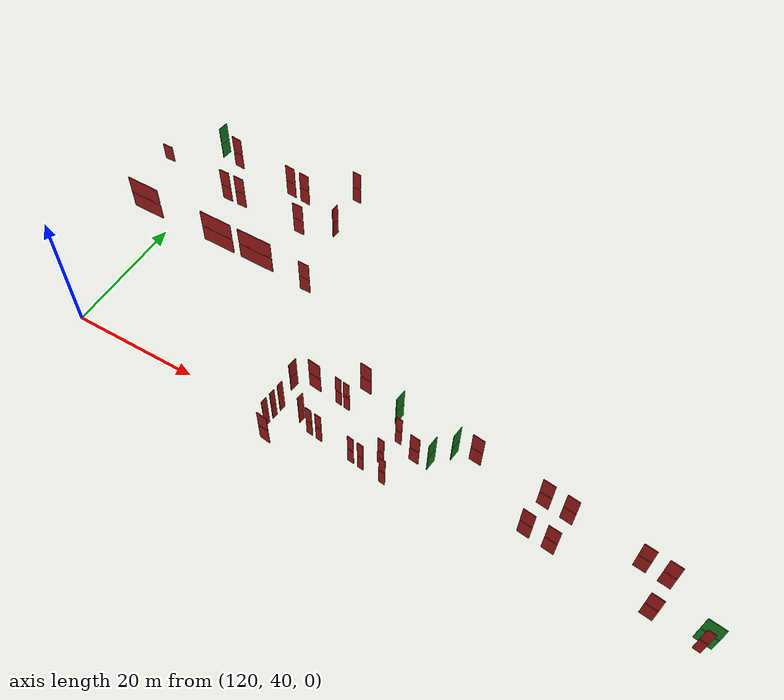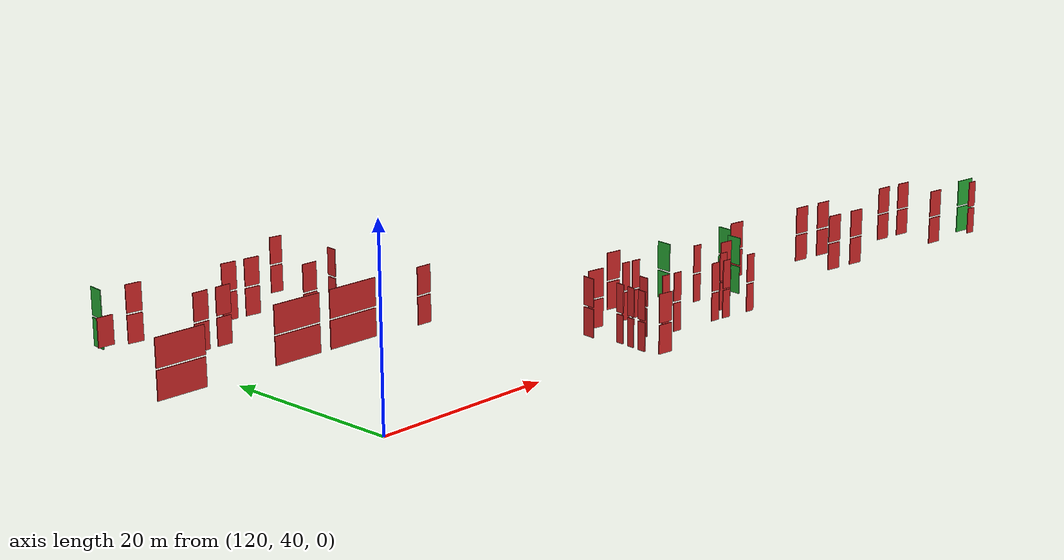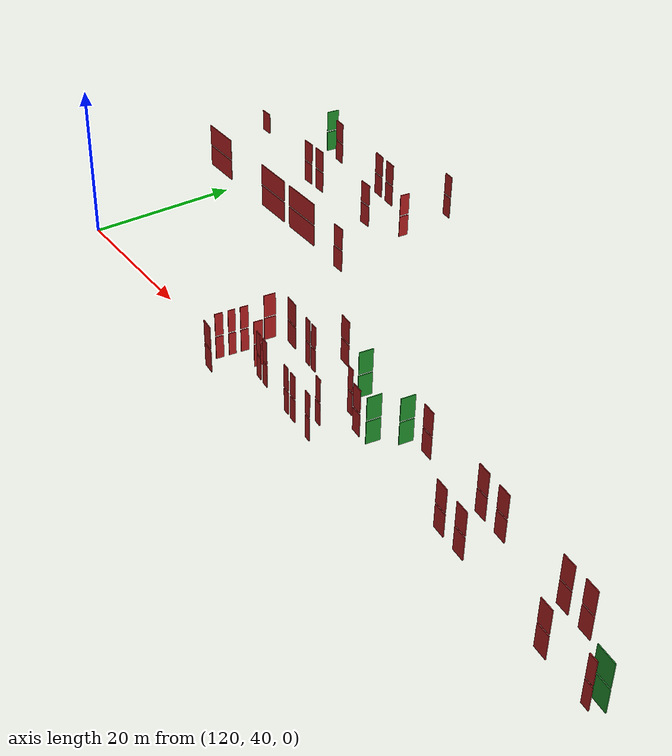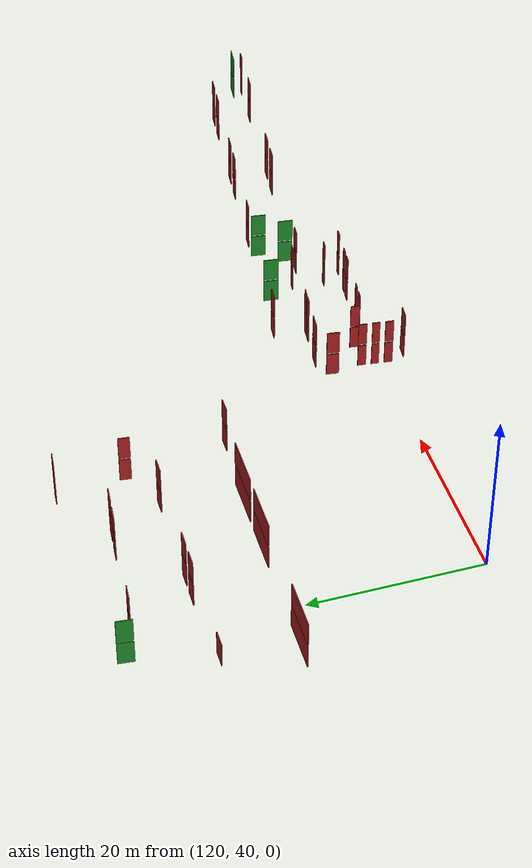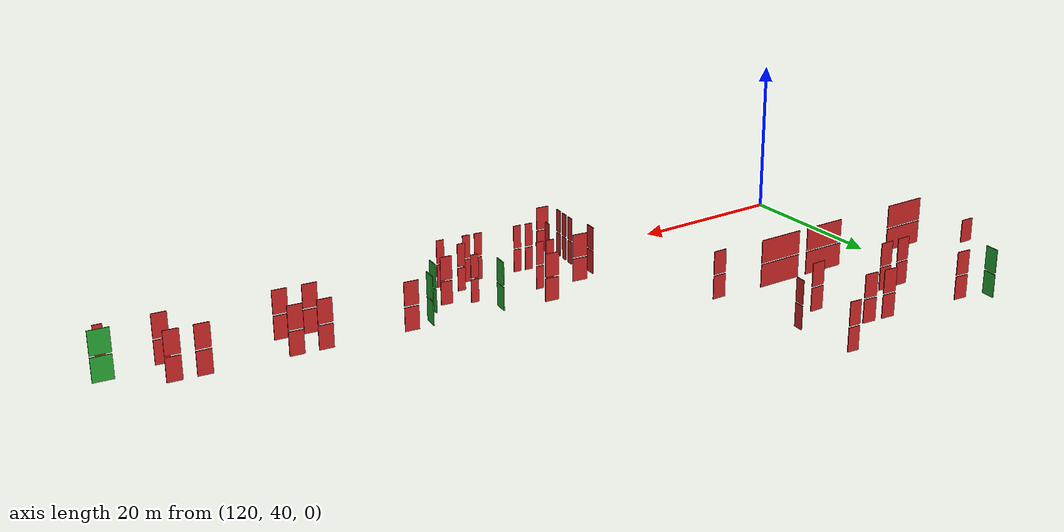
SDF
<sdf version="1.6">
 <world name="default">
  <model name="door_153.8_39.0_0.0">
   <static>true</static>
   <pose>153.77499999999418 38.99500000011176 1.5 0 0 -1.6814535479881518</pose>
   <link name="link">
    <visual name="visual">
     <geometry><box><size>0.9960923654221514 0.1 3</size></box></geometry>
     <material>
      <script><uri>file://media/materials/scripts/gazebo.material</uri><name>Gazebo/Red</name></script>
     </material>
    </visual>
   </link>
  </model>
  <model name="door_166.5_39.9_0.0">
   <static>true</static>
   <pose>166.50500000000466 39.91000000014901 1.5 0 0 -0.1206236686924795</pose>
   <link name="link">
    <visual name="visual">
     <geometry><box><size>0.9972462083198822 0.1 3</size></box></geometry>
     <material>
      <script><uri>file://media/materials/scripts/gazebo.material</uri><name>Gazebo/Red</name></script>
     </material>
    </visual>
   </link>
  </model>
  <model name="door_153.7_45.9_0.0">
   <static>true</static>
   <pose>153.6600000000035 45.92999999993481 1.5 0 0 -1.6918235466009592</pose>
   <link name="link">
    <visual name="visual">
     <geometry><box><size>1.4909057649436974 0.1 3</size></box></geometry>
     <material>
      <script><uri>file://media/materials/scripts/gazebo.material</uri><name>Gazebo/Red</name></script>
     </material>
    </visual>
   </link>
  </model>
  <model name="door_161.1_40.6_0.0">
   <static>true</static>
   <pose>161.1350000000093 40.56000000005588 1.5 0 0 -0.1206236686924795</pose>
   <link name="link">
    <visual name="visual">
     <geometry><box><size>0.9972462083198822 0.1 3</size></box></geometry>
     <material>
      <script><uri>file://media/materials/scripts/gazebo.material</uri><name>Gazebo/Red</name></script>
     </material>
    </visual>
   </link>
  </model>
  <model name="door_191.0_47.1_0.0">
   <static>true</static>
   <pose>190.97500000000582 47.06499999994412 1.5 0 0 3.02480805813934</pose>
   <link name="link">
    <visual name="visual">
     <geometry><box><size>1.8022763383869123 0.1 3</size></box></geometry>
     <material>
      <script><uri>file://media/materials/scripts/gazebo.material</uri><name>Gazebo/Red</name></script>
     </material>
    </visual>
   </link>
  </model>
  <model name="door_180.6_48.3_0.0">
   <static>true</static>
   <pose>180.6350000000093 48.31000000005588 1.5 0 0 3.0193009299888676</pose>
   <link name="link">
    <visual name="visual">
     <geometry><box><size>1.8034688796923075 0.1 3</size></box></geometry>
     <material>
      <script><uri>file://media/materials/scripts/gazebo.material</uri><name>Gazebo/Red</name></script>
     </material>
    </visual>
   </link>
  </model>
  <model name="door_154.0_40.6_0.0">
   <static>true</static>
   <pose>153.9649999999965 40.574999999953434 1.5 0 0 -1.693768196390317</pose>
   <link name="link">
    <visual name="visual">
     <geometry><box><size>0.8967719889926413 0.1 3</size></box></geometry>
     <material>
      <script><uri>file://media/materials/scripts/gazebo.material</uri><name>Gazebo/Red</name></script>
     </material>
    </visual>
   </link>
  </model>
  <model name="door_168.1_39.7_0.0">
   <static>true</static>
   <pose>168.09500000000116 39.71999999997206 1.5 0 0 -0.12062366822190172</pose>
   <link name="link">
    <visual name="visual">
     <geometry><box><size>0.9972462083216332 0.1 3</size></box></geometry>
     <material>
      <script><uri>file://media/materials/scripts/gazebo.material</uri><name>Gazebo/Red</name></script>
     </material>
    </visual>
   </link>
  </model>
  <model name="door_194.4_46.6_0.0">
   <static>true</static>
   <pose>194.41500000000815 46.64999999990687 1.5 0 0 3.0193009299849303</pose>
   <link name="link">
    <visual name="visual">
     <geometry><box><size>1.8034688796345346 0.1 3</size></box></geometry>
     <material>
      <script><uri>file://media/materials/scripts/gazebo.material</uri><name>Gazebo/Red</name></script>
     </material>
    </visual>
   </link>
  </model>
  <model name="door_204.7_45.4_0.0">
   <static>true</static>
   <pose>204.74499999999534 45.40499999979511 1.5 0 0 3.0248080581431034</pose>
   <link name="link">
    <visual name="visual">
     <geometry><box><size>1.8022763384447233 0.1 3</size></box></geometry>
     <material>
      <script><uri>file://media/materials/scripts/gazebo.material</uri><name>Gazebo/Red</name></script>
     </material>
    </visual>
   </link>
  </model>
  <model name="door_156.3_47.3_0.0">
   <static>true</static>
   <pose>156.25500000000466 47.32000000006519 1.5 0 0 -0.12002333835124222</pose>
   <link name="link">
    <visual name="visual">
     <geometry><box><size>2.004420115606183 0.1 3</size></box></geometry>
     <material>
      <script><uri>file://media/materials/scripts/gazebo.material</uri><name>Gazebo/Red</name></script>
     </material>
    </visual>
   </link>
  </model>
  <model name="door_160.4_46.8_0.0">
   <static>true</static>
   <pose>160.3850000000093 46.81999999983236 1.5 0 0 -0.1206236686924795</pose>
   <link name="link">
    <visual name="visual">
     <geometry><box><size>0.9972462083198822 0.1 3</size></box></geometry>
     <material>
      <script><uri>file://media/materials/scripts/gazebo.material</uri><name>Gazebo/Red</name></script>
     </material>
    </visual>
   </link>
  </model>
  <model name="door_161.8_46.7_0.0">
   <static>true</static>
   <pose>161.7600000000093 46.66000000014901 1.5 0 0 -0.11942892612851068</pose>
   <link name="link">
    <visual name="visual">
     <geometry><box><size>1.0071742649744493 0.1 3</size></box></geometry>
     <material>
      <script><uri>file://media/materials/scripts/gazebo.material</uri><name>Gazebo/Red</name></script>
     </material>
    </visual>
   </link>
  </model>
  <model name="door_170.5_45.6_0.0">
   <static>true</static>
   <pose>170.48499999998603 45.609999999869615 1.5 0 0 -0.1206236686924795</pose>
   <link name="link">
    <visual name="visual">
     <geometry><box><size>0.9972462083198822 0.1 3</size></box></geometry>
     <material>
      <script><uri>file://media/materials/scripts/gazebo.material</uri><name>Gazebo/Red</name></script>
     </material>
    </visual>
   </link>
  </model>
  <model name="door_175.8_44.9_0.0">
   <static>true</static>
   <pose>175.80500000022585 44.86500000022352 1.5 0 0 1.4540117310915928</pose>
   <link name="link">
    <visual name="visual">
     <geometry><box><size>1.802276338498982 0.1 3</size></box></geometry>
     <material>
      <script><uri>file://media/materials/scripts/gazebo.material</uri><name>Gazebo/Green</name></script>
     </material>
    </visual>
   </link>
  </model>
  <model name="door_190.5_42.2_0.0">
   <static>true</static>
   <pose>190.5 42.18999999994412 1.5 0 0 -0.12161902311549111</pose>
   <link name="link">
    <visual name="visual">
     <geometry><box><size>1.8133946068224918 0.1 3</size></box></geometry>
     <material>
      <script><uri>file://media/materials/scripts/gazebo.material</uri><name>Gazebo/Red</name></script>
     </material>
    </visual>
   </link>
  </model>
  <model name="door_194.0_41.8_0.0">
   <static>true</static>
   <pose>194.0350000000035 41.765000000130385 1.5 0 0 -0.11678459545045303</pose>
   <link name="link">
    <visual name="visual">
     <geometry><box><size>1.8022763383869123 0.1 3</size></box></geometry>
     <material>
      <script><uri>file://media/materials/scripts/gazebo.material</uri><name>Gazebo/Red</name></script>
     </material>
    </visual>
   </link>
  </model>
  <model name="door_207.6_40.1_0.0">
   <static>true</static>
   <pose>207.55999999999767 40.13500000000931 1.5 0 0 -0.11743469003206944</pose>
   <link name="link">
    <visual name="visual">
     <geometry><box><size>1.7923448329714338 0.1 3</size></box></geometry>
     <material>
      <script><uri>file://media/materials/scripts/gazebo.material</uri><name>Gazebo/Red</name></script>
     </material>
    </visual>
   </link>
  </model>
  <model name="door_177.8_47.7_0.0">
   <static>true</static>
   <pose>177.8499999999185 47.734999999869615 1.5 0 0 -1.6930880506520969</pose>
   <link name="link">
    <visual name="visual">
     <geometry><box><size>1.803468879749112 0.1 3</size></box></geometry>
     <material>
      <script><uri>file://media/materials/scripts/gazebo.material</uri><name>Gazebo/Green</name></script>
     </material>
    </visual>
   </link>
  </model>
  <model name="door_168.8_48.8_0.0">
   <static>true</static>
   <pose>168.83500000002095 48.825000000186265 1.5 0 0 -1.6875809222415865</pose>
   <link name="link">
    <visual name="visual">
     <geometry><box><size>1.8022763384447233 0.1 3</size></box></geometry>
     <material>
      <script><uri>file://media/materials/scripts/gazebo.material</uri><name>Gazebo/Green</name></script>
     </material>
    </visual>
   </link>
  </model>
  <model name="door_162.6_50.5_0.0">
   <static>true</static>
   <pose>162.57000000000698 50.484999999869615 1.5 0 0 3.02415796381574</pose>
   <link name="link">
    <visual name="visual">
     <geometry><box><size>1.7923448329168745 0.1 3</size></box></geometry>
     <material>
      <script><uri>file://media/materials/scripts/gazebo.material</uri><name>Gazebo/Red</name></script>
     </material>
    </visual>
   </link>
  </model>
  <model name="door_173.6_44.2_0.0">
   <static>true</static>
   <pose>173.6149999999907 44.21999999997206 1.5 0 0 -0.12022278677294355</pose>
   <link name="link">
    <visual name="visual">
     <geometry><box><size>1.5008331019912227 0.1 3</size></box></geometry>
     <material>
      <script><uri>file://media/materials/scripts/gazebo.material</uri><name>Gazebo/Red</name></script>
     </material>
    </visual>
   </link>
  </model>
  <model name="door_214.1_39.3_0.0">
   <static>true</static>
   <pose>214.1350000000093 39.34499999997206 1.5 0 0 -0.11870533746682131</pose>
   <link name="link">
    <visual name="visual">
     <geometry><box><size>1.097724920014552 0.1 3</size></box></geometry>
     <material>
      <script><uri>file://media/materials/scripts/gazebo.material</uri><name>Gazebo/Red</name></script>
     </material>
    </visual>
   </link>
  </model>
  <model name="door_214.4_40.5_0.0">
   <static>true</static>
   <pose>214.44000000006054 40.52000000001863 1.5 0 0 3.0182549527621143</pose>
   <link name="link">
    <visual name="visual">
     <geometry><box><size>2.438524143724567 0.1 3</size></box></geometry>
     <material>
      <script><uri>file://media/materials/scripts/gazebo.material</uri><name>Gazebo/Green</name></script>
     </material>
    </visual>
   </link>
  </model>
  <model name="door_208.1_45.0_0.0">
   <static>true</static>
   <pose>208.09500000000116 45.0 1.5 0 0 3.0193009299849303</pose>
   <link name="link">
    <visual name="visual">
     <geometry><box><size>1.8034688796345346 0.1 3</size></box></geometry>
     <material>
      <script><uri>file://media/materials/scripts/gazebo.material</uri><name>Gazebo/Red</name></script>
     </material>
    </visual>
   </link>
  </model>
  <model name="door_170.0_41.7_0.0">
   <static>true</static>
   <pose>170.0100000000093 41.68999999994412 1.5 0 0 -0.11942892612851068</pose>
   <link name="link">
    <visual name="visual">
     <geometry><box><size>1.0071742649744493 0.1 3</size></box></geometry>
     <material>
      <script><uri>file://media/materials/scripts/gazebo.material</uri><name>Gazebo/Red</name></script>
     </material>
    </visual>
   </link>
  </model>
  <model name="door_154.2_42.2_0.0">
   <static>true</static>
   <pose>154.15000000002328 42.15500000002794 1.5 0 0 -1.6914199953995817</pose>
   <link name="link">
    <visual name="visual">
     <geometry><box><size>0.997246208074735 0.1 3</size></box></geometry>
     <material>
      <script><uri>file://media/materials/scripts/gazebo.material</uri><name>Gazebo/Red</name></script>
     </material>
    </visual>
   </link>
  </model>
  <model name="door_157.5_41.9_0.0">
   <static>true</static>
   <pose>157.51500000001397 41.94500000006519 1.5 0 0 -1.6895016639081246</pose>
   <link name="link">
    <visual name="visual">
     <geometry><box><size>1.0977249203199801 0.1 3</size></box></geometry>
     <material>
      <script><uri>file://media/materials/scripts/gazebo.material</uri><name>Gazebo/Red</name></script>
     </material>
    </visual>
   </link>
  </model>
  <model name="door_154.9_36.9_0.0">
   <static>true</static>
   <pose>154.86999999999534 36.85000000009313 1.5 0 0 -0.11990398547329398</pose>
   <link name="link">
    <visual name="visual">
     <geometry><box><size>1.6720047847367918 0.1 3</size></box></geometry>
     <material>
      <script><uri>file://media/materials/scripts/gazebo.material</uri><name>Gazebo/Red</name></script>
     </material>
    </visual>
   </link>
  </model>
  <model name="door_159.5_40.8_0.0">
   <static>true</static>
   <pose>159.5449999999837 40.75 1.5 0 0 -0.1206236686924795</pose>
   <link name="link">
    <visual name="visual">
     <geometry><box><size>0.9972462083198822 0.1 3</size></box></geometry>
     <material>
      <script><uri>file://media/materials/scripts/gazebo.material</uri><name>Gazebo/Red</name></script>
     </material>
    </visual>
   </link>
  </model>
  <model name="door_171.6_39.3_0.0">
   <static>true</static>
   <pose>171.56500000000233 39.300000000046566 1.5 0 0 -0.12062366822892527</pose>
   <link name="link">
    <visual name="visual">
     <geometry><box><size>0.9972462082638486 0.1 3</size></box></geometry>
     <material>
      <script><uri>file://media/materials/scripts/gazebo.material</uri><name>Gazebo/Red</name></script>
     </material>
    </visual>
   </link>
  </model>
  <model name="door_135.5_76.8_0.0">
   <static>true</static>
   <pose>135.49499999999534 76.79000000003725 1.5 0 0 -0.10022174961299568</pose>
   <link name="link">
    <visual name="visual">
     <geometry><box><size>1.799027515083101 0.1 3</size></box></geometry>
     <material>
      <script><uri>file://media/materials/scripts/gazebo.material</uri><name>Gazebo/Red</name></script>
     </material>
    </visual>
   </link>
  </model>
  <model name="door_132.7_77.1_0.0">
   <static>true</static>
   <pose>132.7049999999872 77.07000000006519 1.5 0 0 -0.10022174987377463</pose>
   <link name="link">
    <visual name="visual">
     <geometry><box><size>1.7990275150717767 0.1 3</size></box></geometry>
     <material>
      <script><uri>file://media/materials/scripts/gazebo.material</uri><name>Gazebo/Red</name></script>
     </material>
    </visual>
   </link>
  </model>
  <model name="door_121.5_78.2_0.0">
   <static>true</static>
   <pose>121.54000000000815 78.20999999996275 1.5 0 0 -0.09966865232787321</pose>
   <link name="link">
    <visual name="visual">
     <geometry><box><size>1.808977611760522 0.1 3</size></box></geometry>
     <material>
      <script><uri>file://media/materials/scripts/gazebo.material</uri><name>Gazebo/Red</name></script>
     </material>
    </visual>
   </link>
  </model>
  <model name="door_118.0_79.5_0.0">
   <static>true</static>
   <pose>117.96999999985565 79.46499999985099 1.5 0 0 1.470574577181901</pose>
   <link name="link">
    <visual name="visual">
     <geometry><box><size>1.799027515083101 0.1 3</size></box></geometry>
     <material>
      <script><uri>file://media/materials/scripts/gazebo.material</uri><name>Gazebo/Green</name></script>
     </material>
    </visual>
   </link>
  </model>
  <model name="door_142.5_81.3_0.0">
   <static>true</static>
   <pose>142.54999999998836 81.33499999996275 1.5 0 0 -0.09966865273705577</pose>
   <link name="link">
    <visual name="visual">
     <geometry><box><size>1.5074813432052014 0.1 3</size></box></geometry>
     <material>
      <script><uri>file://media/materials/scripts/gazebo.material</uri><name>Gazebo/Red</name></script>
     </material>
    </visual>
   </link>
  </model>
  <model name="door_138.2_70.8_0.0">
   <static>true</static>
   <pose>138.2149999999965 70.78000000002794 1.5 0 0 -0.01104927408967263</pose>
   <link name="link">
    <visual name="visual">
     <geometry><box><size>1.810110493862824 0.1 3</size></box></geometry>
     <material>
      <script><uri>file://media/materials/scripts/gazebo.material</uri><name>Gazebo/Red</name></script>
     </material>
    </visual>
   </link>
  </model>
  <model name="door_127.1_71.0_0.0">
   <static>true</static>
   <pose>127.05000000001746 70.9550000000745 1.5 0 0 3.1249275297309125</pose>
   <link name="link">
    <visual name="visual">
     <geometry><box><size>1.8002499826340055 0.1 3</size></box></geometry>
     <material>
      <script><uri>file://media/materials/scripts/gazebo.material</uri><name>Gazebo/Red</name></script>
     </material>
    </visual>
   </link>
  </model>
  <model name="door_124.3_71.0_0.0">
   <static>true</static>
   <pose>124.26499999998487 70.98999999999069 1.5 0 0 3.1305433795001205</pose>
   <link name="link">
    <visual name="visual">
     <geometry><box><size>1.810110493862824 0.1 3</size></box></geometry>
     <material>
      <script><uri>file://media/materials/scripts/gazebo.material</uri><name>Gazebo/Red</name></script>
     </material>
    </visual>
   </link>
  </model>
  <model name="door_143.5_73.3_0.0">
   <static>true</static>
   <pose>143.4550000000163 73.29500000015832 1.5 0 0 1.4718835320591757</pose>
   <link name="link">
    <visual name="visual">
     <geometry><box><size>1.3164345787571878 0.1 3</size></box></geometry>
     <material>
      <script><uri>file://media/materials/scripts/gazebo.material</uri><name>Gazebo/Red</name></script>
     </material>
    </visual>
   </link>
  </model>
  <model name="door_115.0_62.2_0.0">
   <static>true</static>
   <pose>115.0 62.23999999999069 1.5 0 0 -0.014034166198596688</pose>
   <link name="link">
    <visual name="visual">
     <geometry><box><size>5.700561375812611 0.1 3</size></box></geometry>
     <material>
      <script><uri>file://media/materials/scripts/gazebo.material</uri><name>Gazebo/Red</name></script>
     </material>
    </visual>
   </link>
  </model>
  <model name="door_129.0_62.0_0.0">
   <static>true</static>
   <pose>129.01999999998952 62.049999999813735 1.5 0 0 -0.014034166280132265</pose>
   <link name="link">
    <visual name="visual">
     <geometry><box><size>5.7005613758773475 0.1 3</size></box></geometry>
     <material>
      <script><uri>file://media/materials/scripts/gazebo.material</uri><name>Gazebo/Red</name></script>
     </material>
    </visual>
   </link>
  </model>
  <model name="door_136.2_62.0_0.0">
   <static>true</static>
   <pose>136.19500000000698 61.950000000186265 1.5 0 0 -0.013266220046968015</pose>
   <link name="link">
    <visual name="visual">
     <geometry><box><size>6.030530656612972 0.1 3</size></box></geometry>
     <material>
      <script><uri>file://media/materials/scripts/gazebo.material</uri><name>Gazebo/Red</name></script>
     </material>
    </visual>
   </link>
  </model>
  <model name="door_145.4_61.4_0.0">
   <static>true</static>
   <pose>145.44999999998254 61.360000000102445 1.5 0 0 -0.011110653908026076</pose>
   <link name="link">
    <visual name="visual">
     <geometry><box><size>1.8001111076705336 0.1 3</size></box></geometry>
     <material>
      <script><uri>file://media/materials/scripts/gazebo.material</uri><name>Gazebo/Red</name></script>
     </material>
    </visual>
   </link>
  </model>
  <model name="door_153.8_39.0_3.2">
   <static>true</static>
   <pose>153.77499999999418 38.99500000011176 4.7 0 0 -1.6814535479881518</pose>
   <link name="link">
    <visual name="visual">
     <geometry><box><size>0.9960923654221514 0.1 3</size></box></geometry>
     <material>
      <script><uri>file://media/materials/scripts/gazebo.material</uri><name>Gazebo/Red</name></script>
     </material>
    </visual>
   </link>
  </model>
  <model name="door_166.5_39.9_3.2">
   <static>true</static>
   <pose>166.50500000000466 39.91000000014901 4.7 0 0 -0.1206236686924795</pose>
   <link name="link">
    <visual name="visual">
     <geometry><box><size>0.9972462083198822 0.1 3</size></box></geometry>
     <material>
      <script><uri>file://media/materials/scripts/gazebo.material</uri><name>Gazebo/Red</name></script>
     </material>
    </visual>
   </link>
  </model>
  <model name="door_153.7_45.9_3.2">
   <static>true</static>
   <pose>153.6600000000035 45.92999999993481 4.7 0 0 -1.6918235466009592</pose>
   <link name="link">
    <visual name="visual">
     <geometry><box><size>1.4909057649436974 0.1 3</size></box></geometry>
     <material>
      <script><uri>file://media/materials/scripts/gazebo.material</uri><name>Gazebo/Red</name></script>
     </material>
    </visual>
   </link>
  </model>
  <model name="door_161.1_40.6_3.2">
   <static>true</static>
   <pose>161.1350000000093 40.56000000005588 4.7 0 0 -0.1206236686924795</pose>
   <link name="link">
    <visual name="visual">
     <geometry><box><size>0.9972462083198822 0.1 3</size></box></geometry>
     <material>
      <script><uri>file://media/materials/scripts/gazebo.material</uri><name>Gazebo/Red</name></script>
     </material>
    </visual>
   </link>
  </model>
  <model name="door_191.0_47.1_3.2">
   <static>true</static>
   <pose>190.97500000000582 47.06499999994412 4.7 0 0 3.02480805813934</pose>
   <link name="link">
    <visual name="visual">
     <geometry><box><size>1.8022763383869123 0.1 3</size></box></geometry>
     <material>
      <script><uri>file://media/materials/scripts/gazebo.material</uri><name>Gazebo/Red</name></script>
     </material>
    </visual>
   </link>
  </model>
  <model name="door_180.6_48.3_3.2">
   <static>true</static>
   <pose>180.6350000000093 48.31000000005588 4.7 0 0 3.0193009299888676</pose>
   <link name="link">
    <visual name="visual">
     <geometry><box><size>1.8034688796923075 0.1 3</size></box></geometry>
     <material>
      <script><uri>file://media/materials/scripts/gazebo.material</uri><name>Gazebo/Red</name></script>
     </material>
    </visual>
   </link>
  </model>
  <model name="door_154.0_40.6_3.2">
   <static>true</static>
   <pose>153.9649999999965 40.574999999953434 4.7 0 0 -1.693768196390317</pose>
   <link name="link">
    <visual name="visual">
     <geometry><box><size>0.8967719889926413 0.1 3</size></box></geometry>
     <material>
      <script><uri>file://media/materials/scripts/gazebo.material</uri><name>Gazebo/Red</name></script>
     </material>
    </visual>
   </link>
  </model>
  <model name="door_168.1_39.7_3.2">
   <static>true</static>
   <pose>168.09500000000116 39.71999999997206 4.7 0 0 -0.12062366822190172</pose>
   <link name="link">
    <visual name="visual">
     <geometry><box><size>0.9972462083216332 0.1 3</size></box></geometry>
     <material>
      <script><uri>file://media/materials/scripts/gazebo.material</uri><name>Gazebo/Red</name></script>
     </material>
    </visual>
   </link>
  </model>
  <model name="door_194.4_46.6_3.2">
   <static>true</static>
   <pose>194.41500000000815 46.64999999990687 4.7 0 0 3.0193009299849303</pose>
   <link name="link">
    <visual name="visual">
     <geometry><box><size>1.8034688796345346 0.1 3</size></box></geometry>
     <material>
      <script><uri>file://media/materials/scripts/gazebo.material</uri><name>Gazebo/Red</name></script>
     </material>
    </visual>
   </link>
  </model>
  <model name="door_204.7_45.4_3.2">
   <static>true</static>
   <pose>204.74499999999534 45.40499999979511 4.7 0 0 3.0248080581431034</pose>
   <link name="link">
    <visual name="visual">
     <geometry><box><size>1.8022763384447233 0.1 3</size></box></geometry>
     <material>
      <script><uri>file://media/materials/scripts/gazebo.material</uri><name>Gazebo/Red</name></script>
     </material>
    </visual>
   </link>
  </model>
  <model name="door_156.3_47.3_3.2">
   <static>true</static>
   <pose>156.25500000000466 47.32000000006519 4.7 0 0 -0.12002333835124222</pose>
   <link name="link">
    <visual name="visual">
     <geometry><box><size>2.004420115606183 0.1 3</size></box></geometry>
     <material>
      <script><uri>file://media/materials/scripts/gazebo.material</uri><name>Gazebo/Red</name></script>
     </material>
    </visual>
   </link>
  </model>
  <model name="door_160.4_46.8_3.2">
   <static>true</static>
   <pose>160.3850000000093 46.81999999983236 4.7 0 0 -0.1206236686924795</pose>
   <link name="link">
    <visual name="visual">
     <geometry><box><size>0.9972462083198822 0.1 3</size></box></geometry>
     <material>
      <script><uri>file://media/materials/scripts/gazebo.material</uri><name>Gazebo/Red</name></script>
     </material>
    </visual>
   </link>
  </model>
  <model name="door_161.8_46.7_3.2">
   <static>true</static>
   <pose>161.7600000000093 46.66000000014901 4.7 0 0 -0.11942892612851068</pose>
   <link name="link">
    <visual name="visual">
     <geometry><box><size>1.0071742649744493 0.1 3</size></box></geometry>
     <material>
      <script><uri>file://media/materials/scripts/gazebo.material</uri><name>Gazebo/Red</name></script>
     </material>
    </visual>
   </link>
  </model>
  <model name="door_170.5_45.6_3.2">
   <static>true</static>
   <pose>170.48499999998603 45.609999999869615 4.7 0 0 -0.1206236686924795</pose>
   <link name="link">
    <visual name="visual">
     <geometry><box><size>0.9972462083198822 0.1 3</size></box></geometry>
     <material>
      <script><uri>file://media/materials/scripts/gazebo.material</uri><name>Gazebo/Red</name></script>
     </material>
    </visual>
   </link>
  </model>
  <model name="door_175.8_44.9_3.2">
   <static>true</static>
   <pose>175.80500000022585 44.86500000022352 4.7 0 0 1.4540117310915928</pose>
   <link name="link">
    <visual name="visual">
     <geometry><box><size>1.802276338498982 0.1 3</size></box></geometry>
     <material>
      <script><uri>file://media/materials/scripts/gazebo.material</uri><name>Gazebo/Green</name></script>
     </material>
    </visual>
   </link>
  </model>
  <model name="door_190.5_42.2_3.2">
   <static>true</static>
   <pose>190.5 42.18999999994412 4.7 0 0 -0.12161902311549111</pose>
   <link name="link">
    <visual name="visual">
     <geometry><box><size>1.8133946068224918 0.1 3</size></box></geometry>
     <material>
      <script><uri>file://media/materials/scripts/gazebo.material</uri><name>Gazebo/Red</name></script>
     </material>
    </visual>
   </link>
  </model>
  <model name="door_194.0_41.8_3.2">
   <static>true</static>
   <pose>194.0350000000035 41.765000000130385 4.7 0 0 -0.11678459545045303</pose>
   <link name="link">
    <visual name="visual">
     <geometry><box><size>1.8022763383869123 0.1 3</size></box></geometry>
     <material>
      <script><uri>file://media/materials/scripts/gazebo.material</uri><name>Gazebo/Red</name></script>
     </material>
    </visual>
   </link>
  </model>
  <model name="door_207.6_40.1_3.2">
   <static>true</static>
   <pose>207.55999999999767 40.13500000000931 4.7 0 0 -0.11743469003206944</pose>
   <link name="link">
    <visual name="visual">
     <geometry><box><size>1.7923448329714338 0.1 3</size></box></geometry>
     <material>
      <script><uri>file://media/materials/scripts/gazebo.material</uri><name>Gazebo/Red</name></script>
     </material>
    </visual>
   </link>
  </model>
  <model name="door_177.8_47.7_3.2">
   <static>true</static>
   <pose>177.8499999999185 47.734999999869615 4.7 0 0 -1.6930880506520969</pose>
   <link name="link">
    <visual name="visual">
     <geometry><box><size>1.803468879749112 0.1 3</size></box></geometry>
     <material>
      <script><uri>file://media/materials/scripts/gazebo.material</uri><name>Gazebo/Green</name></script>
     </material>
    </visual>
   </link>
  </model>
  <model name="door_168.8_48.8_3.2">
   <static>true</static>
   <pose>168.83500000002095 48.825000000186265 4.7 0 0 -1.6875809222415865</pose>
   <link name="link">
    <visual name="visual">
     <geometry><box><size>1.8022763384447233 0.1 3</size></box></geometry>
     <material>
      <script><uri>file://media/materials/scripts/gazebo.material</uri><name>Gazebo/Green</name></script>
     </material>
    </visual>
   </link>
  </model>
  <model name="door_162.6_50.5_3.2">
   <static>true</static>
   <pose>162.57000000000698 50.484999999869615 4.7 0 0 3.02415796381574</pose>
   <link name="link">
    <visual name="visual">
     <geometry><box><size>1.7923448329168745 0.1 3</size></box></geometry>
     <material>
      <script><uri>file://media/materials/scripts/gazebo.material</uri><name>Gazebo/Red</name></script>
     </material>
    </visual>
   </link>
  </model>
  <model name="door_173.6_44.2_3.2">
   <static>true</static>
   <pose>173.6149999999907 44.21999999997206 4.7 0 0 -0.12022278677294355</pose>
   <link name="link">
    <visual name="visual">
     <geometry><box><size>1.5008331019912227 0.1 3</size></box></geometry>
     <material>
      <script><uri>file://media/materials/scripts/gazebo.material</uri><name>Gazebo/Red</name></script>
     </material>
    </visual>
   </link>
  </model>
  <model name="door_214.1_39.3_3.2">
   <static>true</static>
   <pose>214.1350000000093 39.34499999997206 4.7 0 0 -0.11870533746682131</pose>
   <link name="link">
    <visual name="visual">
     <geometry><box><size>1.097724920014552 0.1 3</size></box></geometry>
     <material>
      <script><uri>file://media/materials/scripts/gazebo.material</uri><name>Gazebo/Red</name></script>
     </material>
    </visual>
   </link>
  </model>
  <model name="door_214.4_40.5_3.2">
   <static>true</static>
   <pose>214.44000000006054 40.52000000001863 4.7 0 0 3.0182549527621143</pose>
   <link name="link">
    <visual name="visual">
     <geometry><box><size>2.438524143724567 0.1 3</size></box></geometry>
     <material>
      <script><uri>file://media/materials/scripts/gazebo.material</uri><name>Gazebo/Green</name></script>
     </material>
    </visual>
   </link>
  </model>
  <model name="door_208.1_45.0_3.2">
   <static>true</static>
   <pose>208.09500000000116 45.0 4.7 0 0 3.0193009299849303</pose>
   <link name="link">
    <visual name="visual">
     <geometry><box><size>1.8034688796345346 0.1 3</size></box></geometry>
     <material>
      <script><uri>file://media/materials/scripts/gazebo.material</uri><name>Gazebo/Red</name></script>
     </material>
    </visual>
   </link>
  </model>
  <model name="door_170.0_41.7_3.2">
   <static>true</static>
   <pose>170.0100000000093 41.68999999994412 4.7 0 0 -0.11942892612851068</pose>
   <link name="link">
    <visual name="visual">
     <geometry><box><size>1.0071742649744493 0.1 3</size></box></geometry>
     <material>
      <script><uri>file://media/materials/scripts/gazebo.material</uri><name>Gazebo/Red</name></script>
     </material>
    </visual>
   </link>
  </model>
  <model name="door_154.2_42.2_3.2">
   <static>true</static>
   <pose>154.15000000002328 42.15500000002794 4.7 0 0 -1.6914199953995817</pose>
   <link name="link">
    <visual name="visual">
     <geometry><box><size>0.997246208074735 0.1 3</size></box></geometry>
     <material>
      <script><uri>file://media/materials/scripts/gazebo.material</uri><name>Gazebo/Red</name></script>
     </material>
    </visual>
   </link>
  </model>
  <model name="door_157.5_41.9_3.2">
   <static>true</static>
   <pose>157.51500000001397 41.94500000006519 4.7 0 0 -1.6895016639081246</pose>
   <link name="link">
    <visual name="visual">
     <geometry><box><size>1.0977249203199801 0.1 3</size></box></geometry>
     <material>
      <script><uri>file://media/materials/scripts/gazebo.material</uri><name>Gazebo/Red</name></script>
     </material>
    </visual>
   </link>
  </model>
  <model name="door_154.9_36.9_3.2">
   <static>true</static>
   <pose>154.86999999999534 36.85000000009313 4.7 0 0 -0.11990398547329398</pose>
   <link name="link">
    <visual name="visual">
     <geometry><box><size>1.6720047847367918 0.1 3</size></box></geometry>
     <material>
      <script><uri>file://media/materials/scripts/gazebo.material</uri><name>Gazebo/Red</name></script>
     </material>
    </visual>
   </link>
  </model>
  <model name="door_159.5_40.8_3.2">
   <static>true</static>
   <pose>159.5449999999837 40.75 4.7 0 0 -0.1206236686924795</pose>
   <link name="link">
    <visual name="visual">
     <geometry><box><size>0.9972462083198822 0.1 3</size></box></geometry>
     <material>
      <script><uri>file://media/materials/scripts/gazebo.material</uri><name>Gazebo/Red</name></script>
     </material>
    </visual>
   </link>
  </model>
  <model name="door_171.6_39.3_3.2">
   <static>true</static>
   <pose>171.56500000000233 39.300000000046566 4.7 0 0 -0.12062366822892527</pose>
   <link name="link">
    <visual name="visual">
     <geometry><box><size>0.9972462082638486 0.1 3</size></box></geometry>
     <material>
      <script><uri>file://media/materials/scripts/gazebo.material</uri><name>Gazebo/Red</name></script>
     </material>
    </visual>
   </link>
  </model>
  <model name="door_135.5_76.8_3.2">
   <static>true</static>
   <pose>135.49499999999534 76.79000000003725 4.7 0 0 -0.10022174961299568</pose>
   <link name="link">
    <visual name="visual">
     <geometry><box><size>1.799027515083101 0.1 3</size></box></geometry>
     <material>
      <script><uri>file://media/materials/scripts/gazebo.material</uri><name>Gazebo/Red</name></script>
     </material>
    </visual>
   </link>
  </model>
  <model name="door_132.7_77.1_3.2">
   <static>true</static>
   <pose>132.7049999999872 77.07000000006519 4.7 0 0 -0.10022174987377463</pose>
   <link name="link">
    <visual name="visual">
     <geometry><box><size>1.7990275150717767 0.1 3</size></box></geometry>
     <material>
      <script><uri>file://media/materials/scripts/gazebo.material</uri><name>Gazebo/Red</name></script>
     </material>
    </visual>
   </link>
  </model>
  <model name="door_121.5_78.2_3.2">
   <static>true</static>
   <pose>121.54000000000815 78.20999999996275 4.7 0 0 -0.09966865232787321</pose>
   <link name="link">
    <visual name="visual">
     <geometry><box><size>1.808977611760522 0.1 3</size></box></geometry>
     <material>
      <script><uri>file://media/materials/scripts/gazebo.material</uri><name>Gazebo/Red</name></script>
     </material>
    </visual>
   </link>
  </model>
  <model name="door_118.0_79.5_3.2">
   <static>true</static>
   <pose>117.96999999985565 79.46499999985099 4.7 0 0 1.470574577181901</pose>
   <link name="link">
    <visual name="visual">
     <geometry><box><size>1.799027515083101 0.1 3</size></box></geometry>
     <material>
      <script><uri>file://media/materials/scripts/gazebo.material</uri><name>Gazebo/Green</name></script>
     </material>
    </visual>
   </link>
  </model>
  <model name="door_142.5_81.3_3.2">
   <static>true</static>
   <pose>142.54999999998836 81.33499999996275 4.7 0 0 -0.09966865273705577</pose>
   <link name="link">
    <visual name="visual">
     <geometry><box><size>1.5074813432052014 0.1 3</size></box></geometry>
     <material>
      <script><uri>file://media/materials/scripts/gazebo.material</uri><name>Gazebo/Red</name></script>
     </material>
    </visual>
   </link>
  </model>
  <model name="door_138.2_70.8_3.2">
   <static>true</static>
   <pose>138.2149999999965 70.78000000002794 4.7 0 0 -0.01104927408967263</pose>
   <link name="link">
    <visual name="visual">
     <geometry><box><size>1.810110493862824 0.1 3</size></box></geometry>
     <material>
      <script><uri>file://media/materials/scripts/gazebo.material</uri><name>Gazebo/Red</name></script>
     </material>
    </visual>
   </link>
  </model>
  <model name="door_127.1_71.0_3.2">
   <static>true</static>
   <pose>127.05000000001746 70.9550000000745 4.7 0 0 3.1249275297309125</pose>
   <link name="link">
    <visual name="visual">
     <geometry><box><size>1.8002499826340055 0.1 3</size></box></geometry>
     <material>
      <script><uri>file://media/materials/scripts/gazebo.material</uri><name>Gazebo/Red</name></script>
     </material>
    </visual>
   </link>
  </model>
  <model name="door_124.3_71.0_3.2">
   <static>true</static>
   <pose>124.26499999998487 70.98999999999069 4.7 0 0 3.1305433795001205</pose>
   <link name="link">
    <visual name="visual">
     <geometry><box><size>1.810110493862824 0.1 3</size></box></geometry>
     <material>
      <script><uri>file://media/materials/scripts/gazebo.material</uri><name>Gazebo/Red</name></script>
     </material>
    </visual>
   </link>
  </model>
  <model name="door_113.0_71.1_3.2">
   <static>true</static>
   <pose>113.03500000000349 71.13000000012107 4.7 0 0 3.1305433795001205</pose>
   <link name="link">
    <visual name="visual">
     <geometry><box><size>1.810110493862824 0.1 3</size></box></geometry>
     <material>
      <script><uri>file://media/materials/scripts/gazebo.material</uri><name>Gazebo/Red</name></script>
     </material>
    </visual>
   </link>
  </model>
  <model name="door_143.5_73.3_3.2">
   <static>true</static>
   <pose>143.4550000000163 73.29500000015832 4.7 0 0 1.4718835320591757</pose>
   <link name="link">
    <visual name="visual">
     <geometry><box><size>1.3164345787571878 0.1 3</size></box></geometry>
     <material>
      <script><uri>file://media/materials/scripts/gazebo.material</uri><name>Gazebo/Red</name></script>
     </material>
    </visual>
   </link>
  </model>
  <model name="door_115.0_62.2_3.2">
   <static>true</static>
   <pose>115.0 62.23999999999069 4.7 0 0 -0.014034166198596688</pose>
   <link name="link">
    <visual name="visual">
     <geometry><box><size>5.700561375812611 0.1 3</size></box></geometry>
     <material>
      <script><uri>file://media/materials/scripts/gazebo.material</uri><name>Gazebo/Red</name></script>
     </material>
    </visual>
   </link>
  </model>
  <model name="door_129.0_62.0_3.2">
   <static>true</static>
   <pose>129.01999999998952 62.049999999813735 4.7 0 0 -0.014034166280132265</pose>
   <link name="link">
    <visual name="visual">
     <geometry><box><size>5.7005613758773475 0.1 3</size></box></geometry>
     <material>
      <script><uri>file://media/materials/scripts/gazebo.material</uri><name>Gazebo/Red</name></script>
     </material>
    </visual>
   </link>
  </model>
  <model name="door_136.2_62.0_3.2">
   <static>true</static>
   <pose>136.19500000000698 61.950000000186265 4.7 0 0 -0.013266220046968015</pose>
   <link name="link">
    <visual name="visual">
     <geometry><box><size>6.030530656612972 0.1 3</size></box></geometry>
     <material>
      <script><uri>file://media/materials/scripts/gazebo.material</uri><name>Gazebo/Red</name></script>
     </material>
    </visual>
   </link>
  </model>
  <model name="door_145.4_61.4_3.2">
   <static>true</static>
   <pose>145.44999999998254 61.360000000102445 4.7 0 0 -0.011110653908026076</pose>
   <link name="link">
    <visual name="visual">
     <geometry><box><size>1.8001111076705336 0.1 3</size></box></geometry>
     <material>
      <script><uri>file://media/materials/scripts/gazebo.material</uri><name>Gazebo/Red</name></script>
     </material>
    </visual>
   </link>
  </model>
 </world>
</sdf>
